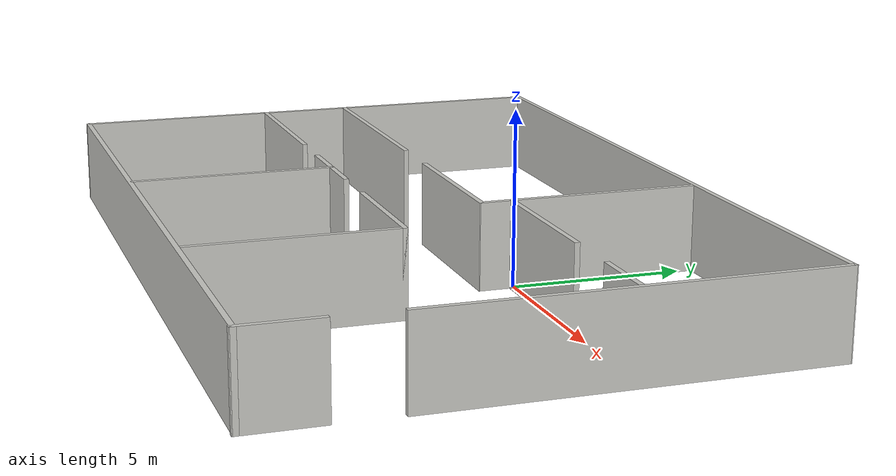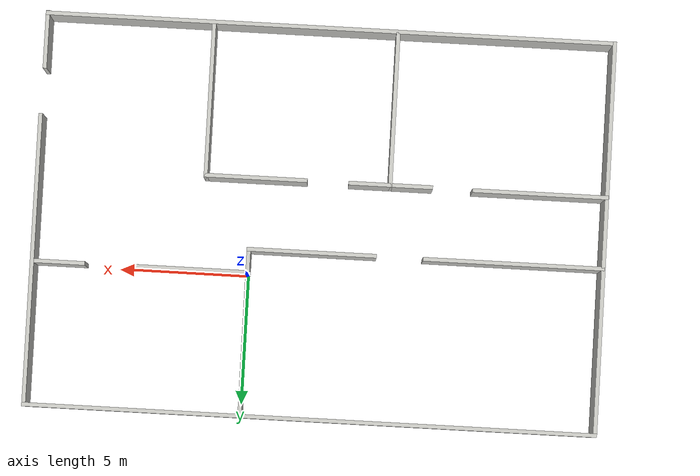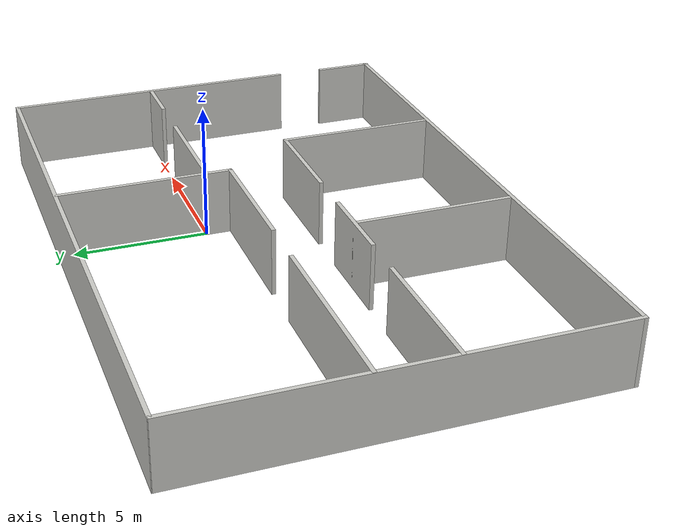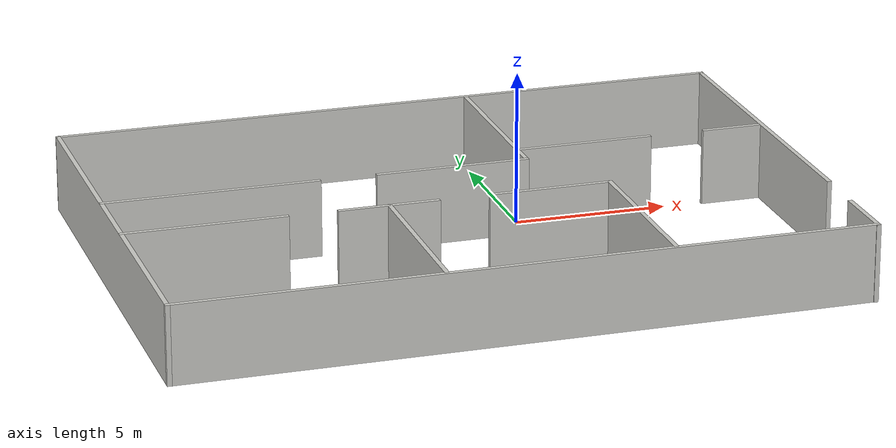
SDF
<?xml version='1.0'?>
<sdf version='1.6'>
  <model name='Indoor_4rooms'>
    <pose frame=''>-2.68184 -2.11492 0 0 -0 0</pose>
    <link name='Wall_1'>
      <collision name='Wall_1_Collision'>
        <geometry>
          <box>
            <size>2.25 0.15 2.5</size>
          </box>
        </geometry>
        <pose frame=''>0 0 1.25 0 -0 0</pose>
      </collision>
      <visual name='Wall_1_Visual'>
        <pose frame=''>0 0 1.25 0 -0 0</pose>
        <geometry>
          <box>
            <size>2.25 0.15 2.5</size>
          </box>
        </geometry>
        <material>
          <script>
            <uri>file://media/materials/scripts/gazebo.material</uri>
            <name>Gazebo/CeilingTiled</name>
          </script>
          <ambient>1 1 1 1</ambient>
        </material>
        <meta>
          <layer>0</layer>
        </meta>
      </visual>
      <pose frame=''>10.9353 -6.5267 0 0 -0 -1.5708</pose>
    </link>
    <link name='Wall_10'>
      <collision name='Wall_10_Collision'>
        <geometry>
          <box>
            <size>5 0.15 2.5</size>
          </box>
        </geometry>
        <pose frame=''>0 0 1.25 0 -0 0</pose>
      </collision>
      <visual name='Wall_10_Visual'>
        <pose frame=''>0 0 1.25 0 -0 0</pose>
        <geometry>
          <box>
            <size>5 0.15 2.5</size>
          </box>
        </geometry>
        <material>
          <script>
            <uri>file://media/materials/scripts/gazebo.material</uri>
            <name>Gazebo/CeilingTiled</name>
          </script>
          <ambient>1 1 1 1</ambient>
        </material>
        <meta>
          <layer>0</layer>
        </meta>
      </visual>
      <pose frame=''>0.254256 1.14992 0 0 -0 0</pose>
    </link>
    <link name='Wall_13'>
      <collision name='Wall_13_Collision'>
        <geometry>
          <box>
            <size>5.25 0.15 2.5</size>
          </box>
        </geometry>
        <pose frame=''>0 0 1.25 0 -0 0</pose>
      </collision>
      <visual name='Wall_13_Visual'>
        <pose frame=''>0 0 1.25 0 -0 0</pose>
        <geometry>
          <box>
            <size>5.25 0.15 2.5</size>
          </box>
        </geometry>
        <material>
          <script>
            <uri>file://media/materials/scripts/gazebo.material</uri>
            <name>Gazebo/CeilingTiled</name>
          </script>
          <ambient>1 1 1 1</ambient>
        </material>
        <meta>
          <layer>0</layer>
        </meta>
      </visual>
      <pose frame=''>-8.42821 -1.58421 0 0 -0 0</pose>
    </link>
    <link name='Wall_15'>
      <collision name='Wall_15_Collision'>
        <geometry>
          <box>
            <size>6.5 0.15 2.5</size>
          </box>
        </geometry>
        <pose frame=''>0 0 1.25 0 -0 0</pose>
      </collision>
      <visual name='Wall_15_Visual'>
        <pose frame=''>0 0 1.25 0 -0 0</pose>
        <geometry>
          <box>
            <size>6.5 0.15 2.5</size>
          </box>
        </geometry>
        <material>
          <script>
            <uri>file://media/materials/scripts/gazebo.material</uri>
            <name>Gazebo/CeilingTiled</name>
          </script>
          <ambient>1 1 1 1</ambient>
        </material>
        <meta>
          <layer>0</layer>
        </meta>
      </visual>
      <pose frame=''>2.67926 4.35152 0 0 -0 1.5708</pose>
    </link>
    <link name='Wall_17'>
      <collision name='Wall_17_Collision'>
        <geometry>
          <box>
            <size>3.25 0.15 2.5</size>
          </box>
        </geometry>
        <pose frame=''>0 0 1.25 0 -0 0</pose>
      </collision>
      <visual name='Wall_17_Visual'>
        <pose frame=''>0 0 1.25 0 -0 0</pose>
        <geometry>
          <box>
            <size>3.25 0.15 2.5</size>
          </box>
        </geometry>
        <material>
          <script>
            <uri>file://media/materials/scripts/gazebo.material</uri>
            <name>Gazebo/CeilingTiled</name>
          </script>
          <ambient>1 1 1 1</ambient>
        </material>
        <meta>
          <layer>0</layer>
        </meta>
      </visual>
      <pose frame=''>-2.64516 -1.61081 0 0 -0 0</pose>
    </link>
    <link name='Wall_19'>
      <collision name='Wall_19_Collision'>
        <geometry>
          <box>
            <size>6 0.15 2.5</size>
          </box>
        </geometry>
        <pose frame=''>0 0 1.25 0 -0 0</pose>
      </collision>
      <visual name='Wall_19_Visual'>
        <pose frame=''>0 0 1.25 0 -0 0</pose>
        <geometry>
          <box>
            <size>6 0.15 2.5</size>
          </box>
        </geometry>
        <material>
          <script>
            <uri>file://media/materials/scripts/gazebo.material</uri>
            <name>Gazebo/CeilingTiled</name>
          </script>
          <ambient>1 1 1 1</ambient>
        </material>
        <meta>
          <layer>0</layer>
        </meta>
      </visual>
      <pose frame=''>-2.62574 -4.53581 0 0 -0 -1.5708</pose>
    </link>
    <link name='Wall_2'>
      <collision name='Wall_2_Collision'>
        <geometry>
          <box>
            <size>22.0738 0.15 2.5</size>
          </box>
        </geometry>
        <pose frame=''>0 0 1.25 0 -0 0</pose>
      </collision>
      <visual name='Wall_2_Visual'>
        <pose frame=''>0 0 1.25 0 -0 0</pose>
        <geometry>
          <box>
            <size>22.0738 0.15 2.5</size>
          </box>
        </geometry>
        <material>
          <script>
            <uri>file://media/materials/scripts/gazebo.material</uri>
            <name>Gazebo/CeilingTiled</name>
          </script>
          <ambient>1 1 1 1</ambient>
        </material>
        <meta>
          <layer>0</layer>
        </meta>
      </visual>
      <pose frame=''>-0.0266 -7.55011 0 0 -0 3.14159</pose>
    </link>
    <link name='Wall_24'>
      <collision name='Wall_24_Collision'>
        <geometry>
          <box>
            <size>4.5 0.15 2.5</size>
          </box>
        </geometry>
        <pose frame=''>0 0 1.25 0 -0 0</pose>
      </collision>
      <visual name='Wall_24_Visual'>
        <pose frame=''>0 0 1.25 0 -0 0</pose>
        <geometry>
          <box>
            <size>4.5 0.15 2.5</size>
          </box>
        </geometry>
        <material>
          <script>
            <uri>file://media/materials/scripts/gazebo.material</uri>
            <name>Gazebo/CeilingTiled</name>
          </script>
          <ambient>1 1 1 1</ambient>
        </material>
        <meta>
          <layer>0</layer>
        </meta>
      </visual>
      <pose frame=''>4.92204 2.04716 0 0 -0 0</pose>
    </link>
    <link name='Wall_26'>
      <collision name='Wall_26_Collision'>
        <geometry>
          <box>
            <size>2 0.15 2.5</size>
          </box>
        </geometry>
        <pose frame=''>0 0 1.25 0 -0 0</pose>
      </collision>
      <visual name='Wall_26_Visual'>
        <pose frame=''>0 0 1.25 0 -0 0</pose>
        <geometry>
          <box>
            <size>2 0.15 2.5</size>
          </box>
        </geometry>
        <material>
          <script>
            <uri>file://media/materials/scripts/gazebo.material</uri>
            <name>Gazebo/CeilingTiled</name>
          </script>
          <ambient>1 1 1 1</ambient>
        </material>
        <meta>
          <layer>0</layer>
        </meta>
      </visual>
      <pose frame=''>9.94657 2.04386 0 0 -0 0</pose>
    </link>
    <link name='Wall_3'>
      <collision name='Wall_3_Collision'>
        <geometry>
          <box>
            <size>15.2502 0.15 2.5</size>
          </box>
        </geometry>
        <pose frame=''>0 0 1.25 0 -0 0</pose>
      </collision>
      <visual name='Wall_3_Visual'>
        <pose frame=''>0 0 1.25 0 -0 0</pose>
        <geometry>
          <box>
            <size>15.2502 0.15 2.5</size>
          </box>
        </geometry>
        <material>
          <script>
            <uri>file://media/materials/scripts/gazebo.material</uri>
            <name>Gazebo/CeilingTiled</name>
          </script>
          <ambient>1 1 1 1</ambient>
        </material>
        <meta>
          <layer>0</layer>
        </meta>
      </visual>
      <pose frame=''>-10.9885 -0 0 0 -0 1.5708</pose>
    </link>
    <link name='Wall_33'>
      <collision name='Wall_33_Collision'>
        <geometry>
          <box>
            <size>4 0.15 2.5</size>
          </box>
        </geometry>
        <pose frame=''>0 0 1.25 0 -0 0</pose>
      </collision>
      <visual name='Wall_33_Visual'>
        <pose frame=''>0 0 1.25 0 -0 0</pose>
        <geometry>
          <box>
            <size>4 0.15 2.5</size>
          </box>
        </geometry>
        <material>
          <script>
            <uri>file://media/materials/scripts/gazebo.material</uri>
            <name>Gazebo/CeilingTiled</name>
          </script>
          <ambient>1 1 1 1</ambient>
        </material>
        <meta>
          <layer>0</layer>
        </meta>
      </visual>
      <pose frame=''>2.57158 -1.61429 0 0 -0 0</pose>
    </link>
    <link name='Wall_34'>
      <collision name='Wall_34_Collision'>
        <geometry>
          <box>
            <size>6 0.15 2.5</size>
          </box>
        </geometry>
        <pose frame=''>0 0 1.25 0 -0 0</pose>
      </collision>
      <visual name='Wall_34_Visual'>
        <pose frame=''>0 0 1.25 0 -0 0</pose>
        <geometry>
          <box>
            <size>6 0.15 2.5</size>
          </box>
        </geometry>
        <material>
          <script>
            <uri>file://media/materials/scripts/gazebo.material</uri>
            <name>Gazebo/CeilingTiled</name>
          </script>
          <ambient>1 1 1 1</ambient>
        </material>
        <meta>
          <layer>0</layer>
        </meta>
      </visual>
      <pose frame=''>4.49657 -4.53929 0 0 -0 -1.5708</pose>
    </link>
    <link name='Wall_4'>
      <collision name='Wall_4_Collision'>
        <geometry>
          <box>
            <size>22.127 0.15 2.5</size>
          </box>
        </geometry>
        <pose frame=''>0 0 1.25 0 -0 0</pose>
      </collision>
      <visual name='Wall_4_Visual'>
        <pose frame=''>0 0 1.25 0 -0 0</pose>
        <geometry>
          <box>
            <size>22.127 0.15 2.5</size>
          </box>
        </geometry>
        <material>
          <script>
            <uri>file://media/materials/scripts/gazebo.material</uri>
            <name>Gazebo/CeilingTiled</name>
          </script>
          <ambient>1 1 1 1</ambient>
        </material>
        <meta>
          <layer>0</layer>
        </meta>
      </visual>
      <pose frame=''>0 7.5767 0 0 -0 0</pose>
    </link>
    <link name='Wall_5'>
      <collision name='Wall_5_Collision'>
        <geometry>
          <box>
            <size>11.2768 0.15 2.5</size>
          </box>
        </geometry>
        <pose frame=''>0 0 1.25 0 -0 0</pose>
      </collision>
      <visual name='Wall_5_Visual'>
        <pose frame=''>0 0 1.25 0 -0 0</pose>
        <geometry>
          <box>
            <size>11.2768 0.15 2.5</size>
          </box>
        </geometry>
        <material>
          <script>
            <uri>file://media/materials/scripts/gazebo.material</uri>
            <name>Gazebo/CeilingTiled</name>
          </script>
          <ambient>1 1 1 1</ambient>
        </material>
        <meta>
          <layer>0</layer>
        </meta>
      </visual>
      <pose frame=''>10.9885 1.9867 0 0 -0 -1.5708</pose>
    </link>
    <link name='Wall_8'>
      <collision name='Wall_8_Collision'>
        <geometry>
          <box>
            <size>7 0.15 2.5</size>
          </box>
        </geometry>
        <pose frame=''>0 0 1.25 0 -0 0</pose>
      </collision>
      <visual name='Wall_8_Visual'>
        <pose frame=''>0 0 1.25 0 -0 0</pose>
        <geometry>
          <box>
            <size>7 0.15 2.5</size>
          </box>
        </geometry>
        <material>
          <script>
            <uri>file://media/materials/scripts/gazebo.material</uri>
            <name>Gazebo/CeilingTiled</name>
          </script>
          <ambient>1 1 1 1</ambient>
        </material>
        <meta>
          <layer>0</layer>
        </meta>
      </visual>
      <pose frame=''>-7.54137 1.1642 0 0 -0 0</pose>
    </link>
    <static>1</static>
  </model>
</sdf>
